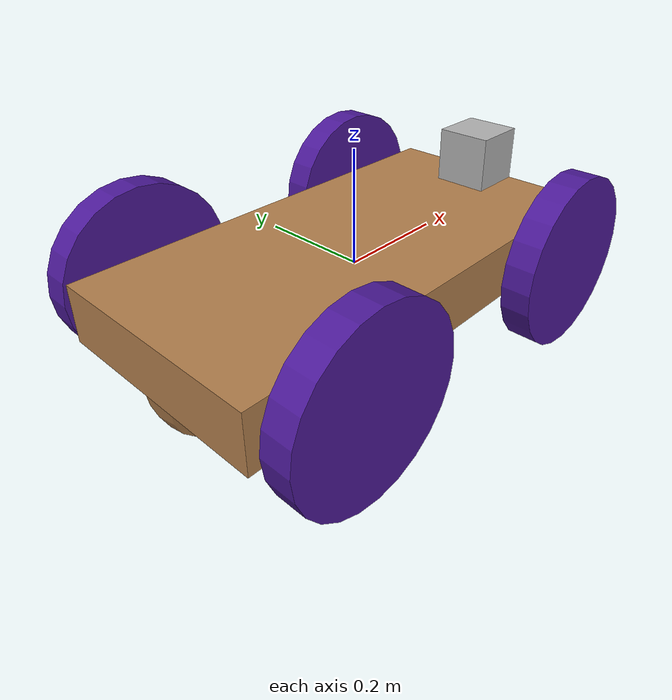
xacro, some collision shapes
<?xml version='1.0'?>

<robot name="my_robot" xmlns:xacro="http://www.ros.org/wiki/xacro">
  <xacro:include filename="$(find my_robot)/urdf/my_robot.gazebo"/>
  <link name="robot_footprint"></link>

  <joint name="robot_footprint_joint" type="fixed">
    <origin xyz="0 0 0" rpy="0 0 0" />
    <parent link="robot_footprint"/>
    <child link="chassis" />
  </joint>

  <link name='chassis'>
    <pose>0 0 0.2 0 0 0</pose>

    <inertial>
      <mass value="20.0"/>
      <origin xyz="0.0 0 0" rpy=" 0 0 0"/>
      <inertia
          ixx="0.1" ixy="0" ixz="0"
          iyy="0.1" iyz="0"
          izz="0.1"
      />
    </inertial>

    <collision name='collision'>
      <origin xyz="0 0 0" rpy=" 0 0 0"/>
      <geometry>
        <box size=".8 .4 .1"/>
      </geometry>
    </collision>

    <visual name='chassis_visual'>
      <origin xyz="0 0 0" rpy=" 0 0 0"/>
      <geometry>
        <box size=".8 .4 .1"/>
      </geometry>
    </visual>

    <collision name='back_caster_collision'>
      <origin xyz="-0.3 0 -0.05" rpy=" 0 0 0"/>
      <geometry>
        <sphere radius="0.1"/>
      </geometry>
    </collision>

    <visual name='back_caster_visual'>
      <origin xyz="-0.3 0 -0.05" rpy=" 0 0 0"/>
      <geometry>
        <sphere radius="0.1"/>
      </geometry>
    </visual>

    <collision name='front_caster_collision'>
      <origin xyz="0.3 0 -0.05" rpy=" 0 0 0"/>
      <geometry>
        <sphere radius="0.1"/>
      </geometry>
    </collision>

    <visual name='front_caster_visual'>
      <origin xyz="0.3 0 -0.05" rpy=" 0 0 0"/>
      <geometry>
        <sphere radius="0.1"/>
      </geometry>
    </visual>

  </link>

  <link name="front_left_wheel">
    <inertial>
      <origin xyz="0 0 0" rpy="0 1.5707 1.5707"/>
      <mass value="10"/>
      <inertia ixx="0.1" ixy="0" ixz="0" iyy="0.1" iyz="0" izz="0.1"/>
    </inertial>
    <visual>
      <origin xyz="0 0 0" rpy="0 1.5707 1.5707"/>
      <geometry>
        <cylinder radius="0.15" length="0.05"/>
      </geometry>
    </visual>
    <collision>
      <origin xyz="0 0 0" rpy="0 1.5707 1.5707"/>
      <geometry>
        <cylinder radius="0.15" length="0.05"/>
      </geometry>
    </collision>
  </link>

  <link name="front_right_wheel">
    <inertial>
      <origin xyz="0 0 0" rpy="0 1.5707 1.5707"/>
      <mass value="10"/>
      <inertia ixx="0.1" ixy="0" ixz="0" iyy="0.1" iyz="0" izz="0.1"/>
    </inertial>
    <visual>
      <origin xyz="0 0 0" rpy="0 1.5707 1.5707"/>
      <geometry>
        <cylinder radius="0.15" length="0.05"/>
      </geometry>
    </visual>
    <collision>
      <origin xyz="0 0 0" rpy="0 1.5707 1.5707"/>
      <geometry>
        <cylinder radius="0.15" length="0.05"/>
      </geometry>
    </collision>
  </link>
  <link name="back_left_wheel">
    <inertial>
      <origin xyz="0 0 0" rpy="0 1.5707 1.5707"/>
      <mass value="10"/>
      <inertia ixx="0.1" ixy="0" ixz="0" iyy="0.1" iyz="0" izz="0.1"/>
    </inertial>
    <visual>
      <origin xyz="0 0 0" rpy="0 1.5707 1.5707"/>
      <geometry>
        <cylinder radius="0.15" length="0.05"/>
      </geometry>
    </visual>
    <collision>
      <origin xyz="0 0 0" rpy="0 1.5707 1.5707"/>
      <geometry>
        <cylinder radius="0.15" length="0.05"/>
      </geometry>
    </collision>
  </link>

  <link name="back_right_wheel">
    <inertial>
      <origin xyz="0 0 0" rpy="0 1.5707 1.5707"/>
      <mass value="10"/>
      <inertia ixx="0.1" ixy="0" ixz="0" iyy="0.1" iyz="0" izz="0.1"/>
    </inertial>
    <visual>
      <origin xyz="0 0 0" rpy="0 1.5707 1.5707"/>
      <geometry>
        <cylinder radius="0.15" length="0.05"/>
      </geometry>
    </visual>
    <collision>
      <origin xyz="0 0 0" rpy="0 1.5707 1.5707"/>
      <geometry>
        <cylinder radius="0.15" length="0.05"/>
      </geometry>
    </collision>
  </link>

  <joint type="continuous" name="front_left_wheel_hinge">
    <origin xyz="0.25 0.25 0" rpy="0 0 0"/>
    <child link="front_left_wheel"/>
    <parent link="chassis"/>
    <axis xyz="0 1 0" rpy="0 0 0"/>
    <limit effort="10000" velocity="1000"/>
    <dynamics damping="1.0" friction="1.0"/>
  </joint>

  <joint type="continuous" name="front_right_wheel_hinge">
    <origin xyz="0.25 -0.25 0" rpy="0 0 0"/>
    <child link="front_right_wheel"/>
    <parent link="chassis"/>
    <axis xyz="0 1 0" rpy="0 0 0"/>
    <limit effort="10000" velocity="1000"/>
    <dynamics damping="1.0" friction="1.0"/>
  </joint>

  <joint type="continuous" name="back_left_wheel_hinge">
    <origin xyz="-0.25 0.25 0" rpy="0 0 0"/>
    <child link="back_left_wheel"/>
    <parent link="chassis"/>
    <axis xyz="0 1 0" rpy="0 0 0"/>
    <limit effort="10000" velocity="1000"/>
    <dynamics damping="1.0" friction="1.0"/>
  </joint>

  <joint type="continuous" name="back_right_wheel_hinge">
    <origin xyz="-0.25 -0.25 0" rpy="0 0 0"/>
    <child link="back_right_wheel"/>
    <parent link="chassis"/>
    <axis xyz="0 1 0" rpy="0 0 0"/>
    <limit effort="10000" velocity="1000"/>
    <dynamics damping="1.0" friction="1.0"/>
  </joint>
  <link name="camera">
    <inertial>
      <origin xyz="0 0 0" rpy="0 0 0"/>
      <mass value="0.1"/>
      <inertia ixx="1e-6" ixy="0" ixz="0" iyy="1e-6" iyz="0" izz="1e-6"/>
      <box_inertia m="0.1" x="0.05" y="0.05" z="0.05"/>
    </inertial>
    <visual>
      <origin xyz="0 0 0" rpy="0 0 0"/>
      <geometry>
        <box size="0.05 0.05 0.05"/>
      </geometry>
    </visual>
    <collision>
      <origin xyz="0 0 0" rpy="0 0 0"/>
      <geometry>
        <box size="0.05 0.05 0.05"/>
      </geometry>
    </collision>
  </link>

  <joint type="fixed" name="camera_joint">
    <origin xyz="0.4 0 0" rpy="0 0 0"/>
    <child link="camera"/>
    <parent link="chassis"/>
    <axis xyz="0 1 0" rpy="0 0 0"/>
  </joint>

  <link name="hokuyo">
    <inertial>
      <origin xyz="0 0 0" rpy="0 0 0"/>
      <mass value="1e-5"/>
      <inertia ixx="1e-6" ixy="0" ixz="0" iyy="1e-6" iyz="0" izz="1e-6"/>
    </inertial>
    <visual>
      <origin xyz="0 0 0" rpy="0 0 0"/>
      <geometry>
        <mesh filename="package://my_robot/meshes/hokuyo.dae"/>
      </geometry>
    </visual>
    <collision>
      <origin xyz="0 0 0" rpy="0 0 0"/>
      <geometry>
        <box size="0.1 0.1 0.1"/>
      </geometry>
    </collision>
  </link>

  <joint type="fixed" name="hokuyo_joint">
    <origin xyz="0.35 0 0.1" rpy="0 0 0"/>
    <child link="hokuyo"/>
    <parent link="chassis"/>
    <axis xyz="0 1 0" rpy="0 0 0"/>
  </joint>

  <gazebo reference="front_left_wheel">
    <material>Gazebo/Indigo</material>
  </gazebo>

  <gazebo reference="front_right_wheel">
    <material>Gazebo/Indigo</material>
  </gazebo>
  <gazebo reference="back_left_wheel">
    <material>Gazebo/Indigo</material>
  </gazebo>

  <gazebo reference="back_right_wheel">
    <material>Gazebo/Indigo</material>
  </gazebo>

  <gazebo reference="camera">
    <material>Gazebo/Blue</material>
  </gazebo>

  <gazebo reference="chassis">
    <material>Gazebo/WoodFloor</material>
  </gazebo>

</robot>
